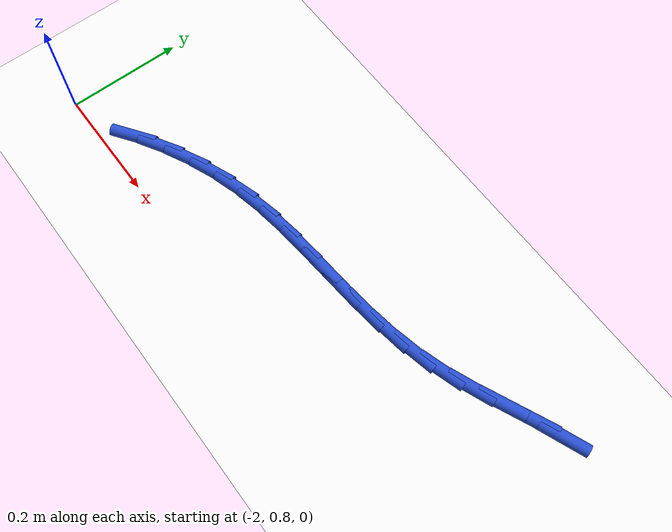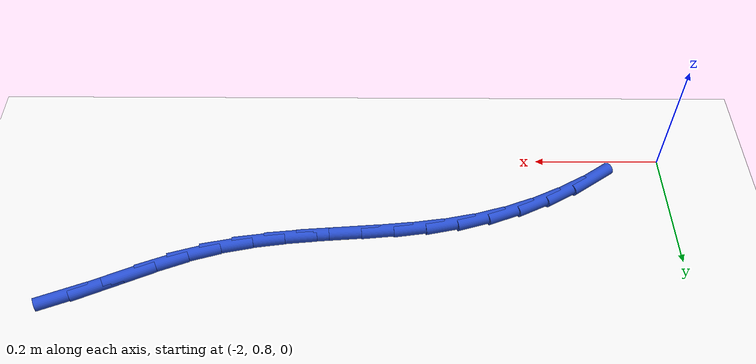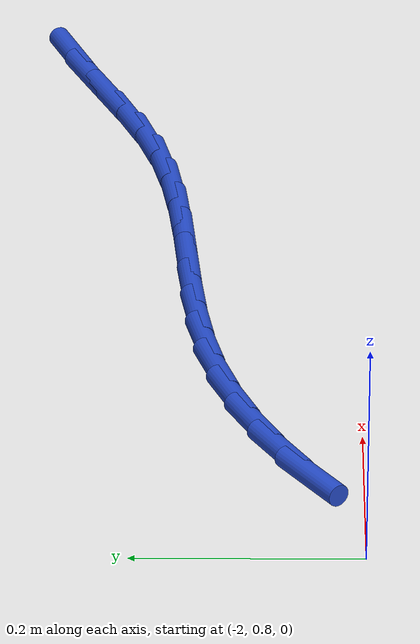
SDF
<sdf version="1.6">
 <world name="default">
  <model name="ground_plane">
   <static>1</static>
   <link name="link">
    <collision name="collision">
     <geometry><plane><normal>0 0 1</normal><size>100 100</size></plane></geometry>
     <surface><friction><ode><mu>100</mu><mu2>50</mu2></ode></friction></surface>
    </collision>
    <visual name="visual">
     <cast_shadows>0</cast_shadows>
     <geometry><plane><normal>0 0 1</normal><size>100 100</size></plane></geometry>
     <material>
      <script><uri>file://media/materials/scripts/gazebo.material</uri><name>Gazebo/WhiteGlow</name></script>
     </material>
    </visual>
   </link>
  </model>
  <model name="line">
   <link name="link_34">
    <pose>-1.0787588829040953 1.0729052611754928 0.01 0 1.57 0.37911773989034736</pose>
    <collision name="collision">
     <geometry><cylinder><radius>0.01</radius><length>0.08</length></cylinder></geometry>
    </collision>
    <visual name="visual">
     <material>
      <script><name>Gazebo/Blue</name><uri>file://media/materials/scripts/gazebo.material</uri></script>
     </material>
     <geometry><cylinder><radius>0.01</radius><length>0.08</length></cylinder></geometry>
    </visual>
   </link>
   <link name="link_35">
    <pose>-1.1242632382312017 1.0547767776880896 0.01 0 1.57 0.42014440793725444</pose>
    <collision name="collision">
     <geometry><cylinder><radius>0.01</radius><length>0.08</length></cylinder></geometry>
    </collision>
    <visual name="visual">
     <material>
      <script><name>Gazebo/Blue</name><uri>file://media/materials/scripts/gazebo.material</uri></script>
     </material>
     <geometry><cylinder><radius>0.01</radius><length>0.08</length></cylinder></geometry>
    </visual>
   </link>
   <link name="link_36">
    <pose>-1.1697071305755533 1.034474911272627 0.01 0 1.57 0.4195668067032248</pose>
    <collision name="collision">
     <geometry><cylinder><radius>0.01</radius><length>0.08</length></cylinder></geometry>
    </collision>
    <visual name="visual">
     <material>
      <script><name>Gazebo/Blue</name><uri>file://media/materials/scripts/gazebo.material</uri></script>
     </material>
     <geometry><cylinder><radius>0.01</radius><length>0.08</length></cylinder></geometry>
    </visual>
   </link>
   <link name="link_37">
    <pose>-1.2153976547576284 1.0140945130114112 0.01 0 1.57 0.3780129767086306</pose>
    <collision name="collision">
     <geometry><cylinder><radius>0.01</radius><length>0.08</length></cylinder></geometry>
    </collision>
    <visual name="visual">
     <material>
      <script><name>Gazebo/Blue</name><uri>file://media/materials/scripts/gazebo.material</uri></script>
     </material>
     <geometry><cylinder><radius>0.01</radius><length>0.08</length></cylinder></geometry>
    </visual>
   </link>
   <link name="link_38">
    <pose>-1.2616419055979038 0.9957304339867483 0.01 0 1.57 0.2966278268644503</pose>
    <collision name="collision">
     <geometry><cylinder><radius>0.01</radius><length>0.08</length></cylinder></geometry>
    </collision>
    <visual name="visual">
     <material>
      <script><name>Gazebo/Blue</name><uri>file://media/materials/scripts/gazebo.material</uri></script>
     </material>
     <geometry><cylinder><radius>0.01</radius><length>0.08</length></cylinder></geometry>
    </visual>
   </link>
   <link name="link_39">
    <pose>-1.3087249159278107 0.9813397363183075 0.01 0 1.57 0.21031162187031924</pose>
    <collision name="collision">
     <geometry><cylinder><radius>0.01</radius><length>0.08</length></cylinder></geometry>
    </collision>
    <visual name="visual">
     <material>
      <script><name>Gazebo/Blue</name><uri>file://media/materials/scripts/gazebo.material</uri></script>
     </material>
     <geometry><cylinder><radius>0.01</radius><length>0.08</length></cylinder></geometry>
    </visual>
   </link>
   <link name="link_40">
    <pose>-1.356648336329136 0.9711096078808217 0.01 0 1.57 0.14534629082477085</pose>
    <collision name="collision">
     <geometry><cylinder><radius>0.01</radius><length>0.08</length></cylinder></geometry>
    </collision>
    <visual name="visual">
     <material>
      <script><name>Gazebo/Blue</name><uri>file://media/materials/scripts/gazebo.material</uri></script>
     </material>
     <geometry><cylinder><radius>0.01</radius><length>0.08</length></cylinder></geometry>
    </visual>
   </link>
   <link name="link_41">
    <pose>-1.4052173429932837 0.9640001485300259 0.01 0 1.57 0.10273306907359131</pose>
    <collision name="collision">
     <geometry><cylinder><radius>0.01</radius><length>0.08</length></cylinder></geometry>
    </collision>
    <visual name="visual">
     <material>
      <script><name>Gazebo/Blue</name><uri>file://media/materials/scripts/gazebo.material</uri></script>
     </material>
     <geometry><cylinder><radius>0.01</radius><length>0.08</length></cylinder></geometry>
    </visual>
   </link>
   <link name="link_42">
    <pose>-1.4542331659628833 0.958946812304601 0.01 0 1.57 0.0822629797242891</pose>
    <collision name="collision">
     <geometry><cylinder><radius>0.01</radius><length>0.08</length></cylinder></geometry>
    </collision>
    <visual name="visual">
     <material>
      <script><name>Gazebo/Blue</name><uri>file://media/materials/scripts/gazebo.material</uri></script>
     </material>
     <geometry><cylinder><radius>0.01</radius><length>0.08</length></cylinder></geometry>
    </visual>
   </link>
   <link name="link_43">
    <pose>-1.5034970352805643 0.954885053243228 0.01 0 1.57 0.08365070059474661</pose>
    <collision name="collision">
     <geometry><cylinder><radius>0.01</radius><length>0.08</length></cylinder></geometry>
    </collision>
    <visual name="visual">
     <material>
      <script><name>Gazebo/Blue</name><uri>file://media/materials/scripts/gazebo.material</uri></script>
     </material>
     <geometry><cylinder><radius>0.01</radius><length>0.08</length></cylinder></geometry>
    </visual>
   </link>
   <link name="link_44">
    <pose>-1.5528101809889567 0.9507503253845875 0.01 0 1.57 0.10683035589574404</pose>
    <collision name="collision">
     <geometry><cylinder><radius>0.01</radius><length>0.08</length></cylinder></geometry>
    </collision>
    <visual name="visual">
     <material>
      <script><name>Gazebo/Blue</name><uri>file://media/materials/scripts/gazebo.material</uri></script>
     </material>
     <geometry><cylinder><radius>0.01</radius><length>0.08</length></cylinder></geometry>
    </visual>
   </link>
   <link name="link_45">
    <pose>-1.60197383313069 0.9454780827673612 0.01 0 1.57 0.15193370260324243</pose>
    <collision name="collision">
     <geometry><cylinder><radius>0.01</radius><length>0.08</length></cylinder></geometry>
    </collision>
    <visual name="visual">
     <material>
      <script><name>Gazebo/Blue</name><uri>file://media/materials/scripts/gazebo.material</uri></script>
     </material>
     <geometry><cylinder><radius>0.01</radius><length>0.08</length></cylinder></geometry>
    </visual>
   </link>
   <link name="link_46">
    <pose>-1.6507892217483935 0.9380037794302294 0.01 0 1.57 0.21895414129044602</pose>
    <collision name="collision">
     <geometry><cylinder><radius>0.01</radius><length>0.08</length></cylinder></geometry>
    </collision>
    <visual name="visual">
     <material>
      <script><name>Gazebo/Blue</name><uri>file://media/materials/scripts/gazebo.material</uri></script>
     </material>
     <geometry><cylinder><radius>0.01</radius><length>0.08</length></cylinder></geometry>
    </visual>
   </link>
   <link name="link_47">
    <pose>-1.6990575642791026 0.9272630344660207 0.01 0 1.57 0.3018115379057464</pose>
    <collision name="collision">
     <geometry><cylinder><radius>0.01</radius><length>0.08</length></cylinder></geometry>
    </collision>
    <visual name="visual">
     <material>
      <script><name>Gazebo/Blue</name><uri>file://media/materials/scripts/gazebo.material</uri></script>
     </material>
     <geometry><cylinder><radius>0.01</radius><length>0.08</length></cylinder></geometry>
    </visual>
   </link>
   <link name="link_48">
    <pose>-1.7465584271621464 0.9124749591137049 0.01 0 1.57 0.383708277931787</pose>
    <collision name="collision">
     <geometry><cylinder><radius>0.01</radius><length>0.08</length></cylinder></geometry>
    </collision>
    <visual name="visual">
     <material>
      <script><name>Gazebo/Blue</name><uri>file://media/materials/scripts/gazebo.material</uri></script>
     </material>
     <geometry><cylinder><radius>0.01</radius><length>0.08</length></cylinder></geometry>
    </visual>
   </link>
   <link name="link_49">
    <pose>-1.7930053300549247 0.8937234628173152 0.01 0 1.57 0.4622226124392185</pose>
    <collision name="collision">
     <geometry><cylinder><radius>0.01</radius><length>0.08</length></cylinder></geometry>
    </collision>
    <visual name="visual">
     <material>
      <script><name>Gazebo/Blue</name><uri>file://media/materials/scripts/gazebo.material</uri></script>
     </material>
     <geometry><cylinder><radius>0.01</radius><length>0.08</length></cylinder></geometry>
    </visual>
   </link>
   <link name="link_50">
    <pose>-1.8380992432890912 0.8712567724041635 0.01 0 1.57 0.5381911312860926</pose>
    <collision name="collision">
     <geometry><cylinder><radius>0.01</radius><length>0.08</length></cylinder></geometry>
    </collision>
    <visual name="visual">
     <material>
      <script><name>Gazebo/Blue</name><uri>file://media/materials/scripts/gazebo.material</uri></script>
     </material>
     <geometry><cylinder><radius>0.01</radius><length>0.08</length></cylinder></geometry>
    </visual>
   </link>
   <link name="link_51">
    <pose>-1.8815411371962982 0.8453231147015619 0.01 0 1.57 0.6124838152362039</pose>
    <collision name="collision">
     <geometry><cylinder><radius>0.01</radius><length>0.08</length></cylinder></geometry>
    </collision>
    <visual name="visual">
     <material>
      <script><name>Gazebo/Blue</name><uri>file://media/materials/scripts/gazebo.material</uri></script>
     </material>
     <geometry><cylinder><radius>0.01</radius><length>0.08</length></cylinder></geometry>
    </visual>
   </link>
  </model>
 </world>
</sdf>
